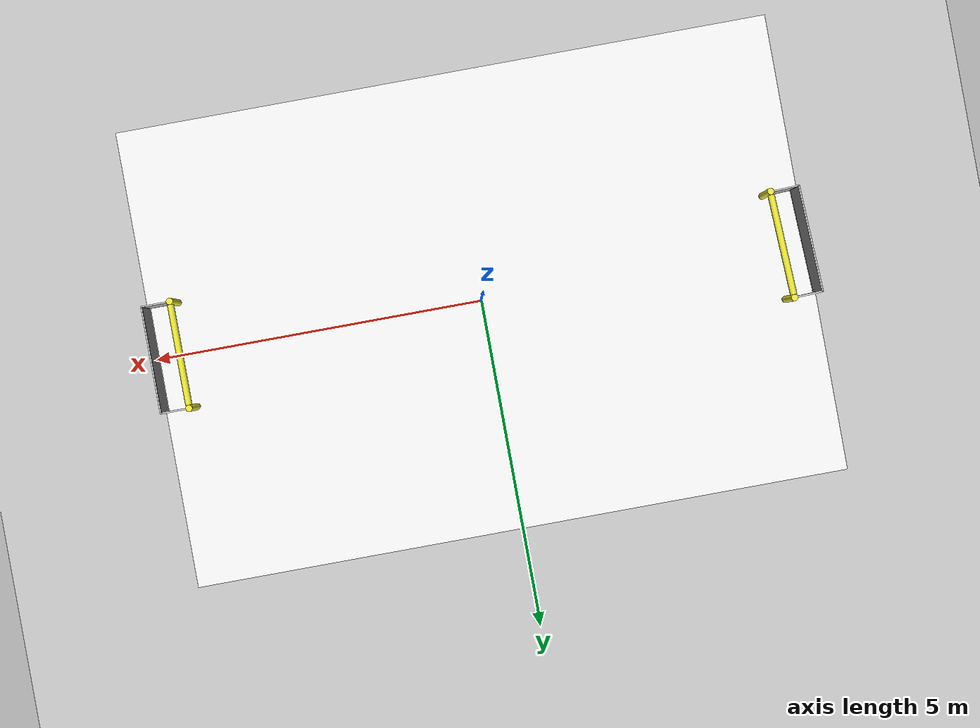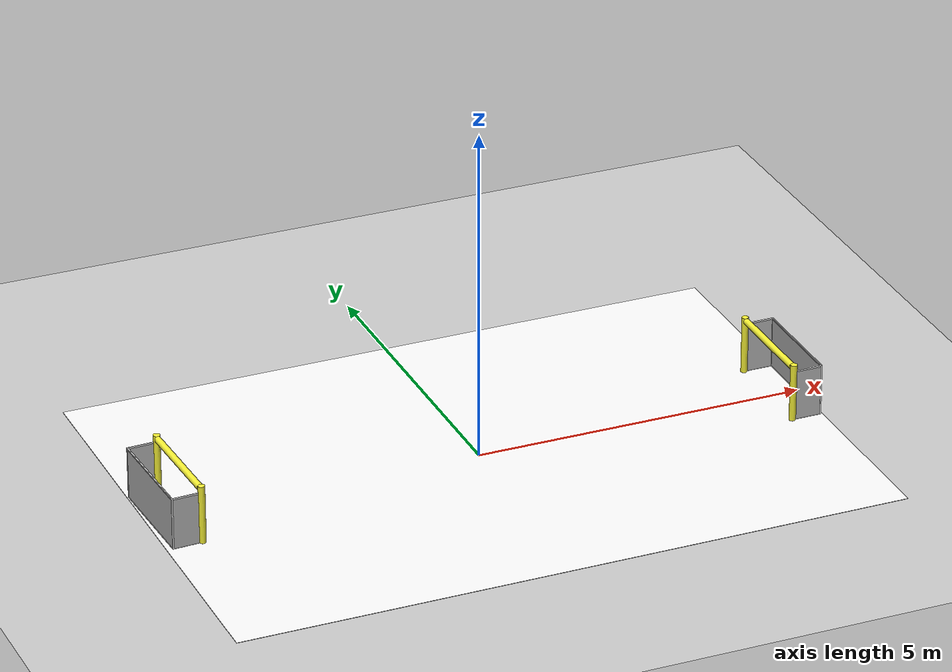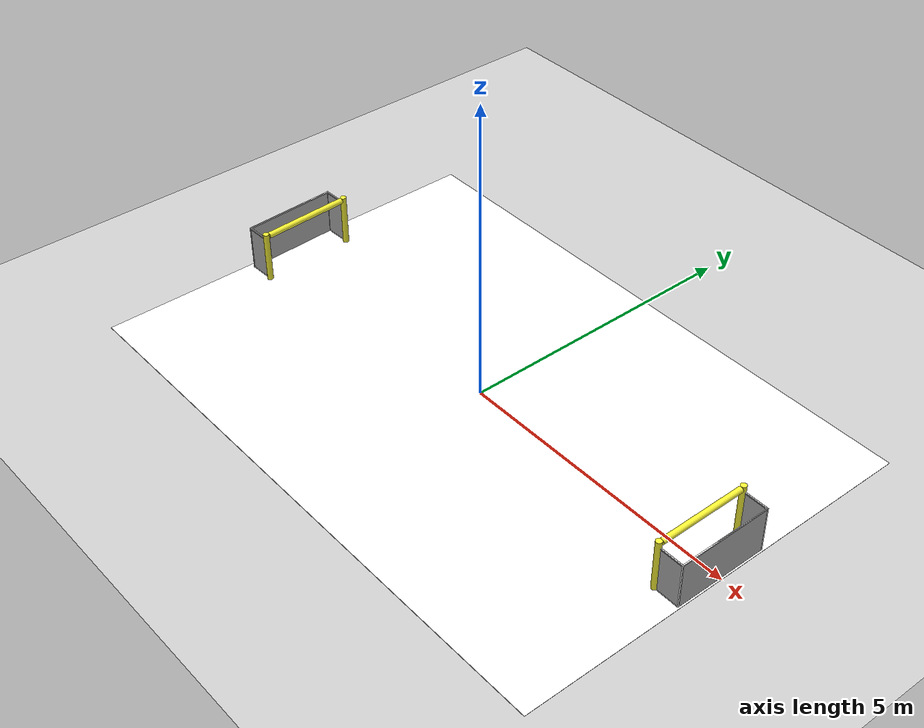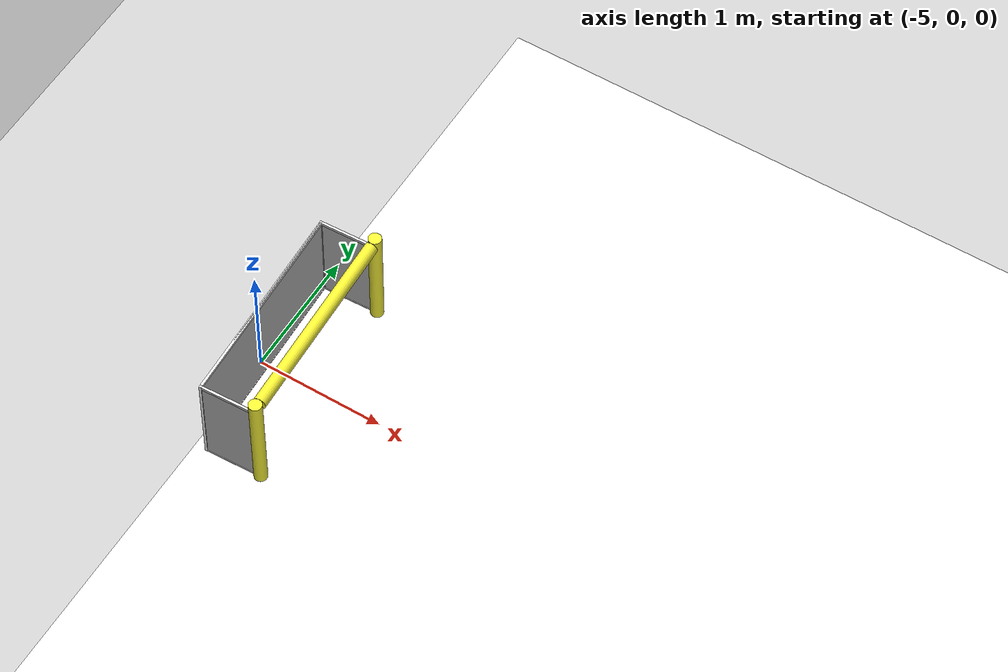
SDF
<sdf version="1.10">
 <world name="altair_world">
  <physics name="1ms" type="ignored">
   <max_step_size>0.001</max_step_size>
   <real_time_factor>1</real_time_factor>
   <real_time_update_rate>1000</real_time_update_rate>
  </physics>
  <plugin name="gz::sim::systems::Physics" filename="gz-sim-physics-system"/>
  <plugin name="gz::sim::systems::UserCommands" filename="gz-sim-user-commands-system"/>
  <plugin name="gz::sim::systems::SceneBroadcaster" filename="gz-sim-scene-broadcaster-system"/>
  <plugin name="gz::sim::systems::Sensors" filename="gz-sim-sensors-system">
   <render_engine>ogre2</render_engine>
  </plugin>
  <plugin name="gz::sim::systems::LogicalCamera" filename="gz-sim-logical-camera-system"/>
  <gravity>0 0 -9.8000000000000007</gravity>
  <magnetic_field>5.5644999999999998e-06 2.2875799999999999e-05 -4.2388400000000002e-05</magnetic_field>
  <atmosphere type="adiabatic"/>
  <scene>
   <ambient>0.400000006 0.400000006 0.400000006 1</ambient>
   <background>0.699999988 0.699999988 0.699999988 1</background>
   <shadows>true</shadows>
  </scene>
  <model name="ground_plane">
   <static>true</static>
   <link name="link">
    <collision name="collision">
     <geometry><plane><normal>0 0 1</normal><size>1 1</size></plane></geometry>
    </collision>
    <visual name="visual">
     <geometry><plane><normal>0 0 1</normal><size>100 100</size></plane></geometry>
     <material>
      <ambient>0.800000012 0.800000012 0.800000012 1</ambient>
      <diffuse>0.800000012 0.800000012 0.800000012 1</diffuse>
      <specular>0.800000012 0.800000012 0.800000012 1</specular>
     </material>
    </visual>
    <inertial>
     <mass>1</mass>
     <inertia><ixx>1</ixx><ixy>0</ixy><ixz>0</ixz><iyy>1</iyy><iyz>0</iyz><izz>1</izz></inertia>
    </inertial>
   </link>
  </model>
  <model name="robocup_3d_field">
   <static>true</static>
   <link name="field">
    <pose>0 0 0.01 0 0 0</pose>
    <collision name="collision">
     <geometry><plane><normal>0 0 1</normal><size>10.0 7.0</size></plane></geometry>
     <surface><friction><ode><mu>100</mu><mu2>50</mu2></ode></friction></surface>
    </collision>
    <visual name="carpet">
     <cast_shadows>false</cast_shadows>
     <geometry><plane><normal>0 0 1</normal><size>10.0 7.0</size></plane></geometry>
     <material>
      <diffuse>1.0 1.0 1.0</diffuse>
      <specular>1.0 1.0 1.0</specular>
      <pbr>
       <metal>
        <albedo_map>textures/plane_a.png</albedo_map>
        <roughness_map>textures/plane_r.png</roughness_map>
        <normal_map>textures/plane_n.png</normal_map>
       </metal>
      </pbr>
     </material>
    </visual>
   </link>
  </model>
  <model name="Goal1">
   <static>true</static>
   <link name="left_post">
    <pose>0 0.80000000000000004 0.45000000000000001 0 0 0</pose>
    <collision name="collision">
     <geometry>
      <cylinder><radius>0.050000000000000003</radius><length>0.90000000000000002</length></cylinder>
     </geometry>
    </collision>
    <visual name="visual">
     <geometry>
      <cylinder><radius>0.050000000000000003</radius><length>0.90000000000000002</length></cylinder>
     </geometry>
     <material>
      <ambient>0.972500026 0.952899992 0.207800001 1</ambient>
      <diffuse>0.972500026 0.952899992 0.207800001 1</diffuse>
      <specular>0.972500026 0.952899992 0.207800001 1</specular>
     </material>
    </visual>
    <inertial>
     <mass>1</mass>
     <inertia><ixx>1</ixx><ixy>0</ixy><ixz>0</ixz><iyy>1</iyy><iyz>0</iyz><izz>1</izz></inertia>
    </inertial>
   </link>
   <link name="left_support_horiz_lower">
    <pose>0.24000000000000021 0.80000000000000004 0.01 0 0 0</pose>
    <collision name="collision"><geometry><box><size>0.38 0.02 0.02</size></box></geometry></collision>
    <visual name="visual">
     <geometry><box><size>0.38 0.02 0.02</size></box></geometry>
     <material><ambient>1 1 1 1</ambient><diffuse>1 1 1 1</diffuse><specular>1 1 1 1</specular></material>
    </visual>
    <inertial>
     <mass>1</mass>
     <inertia><ixx>1</ixx><ixy>0</ixy><ixz>0</ixz><iyy>1</iyy><iyz>0</iyz><izz>1</izz></inertia>
    </inertial>
   </link>
   <link name="left_support_horiz_upper">
    <pose>0.24000000000000021 0.80000000000000004 0.79000000000000004 0 0 0</pose>
    <collision name="collision"><geometry><box><size>0.38 0.02 0.02</size></box></geometry></collision>
    <visual name="visual">
     <geometry><box><size>0.38 0.02 0.02</size></box></geometry>
     <material><ambient>1 1 1 1</ambient><diffuse>1 1 1 1</diffuse><specular>1 1 1 1</specular></material>
    </visual>
    <inertial>
     <mass>1</mass>
     <inertia><ixx>1</ixx><ixy>0</ixy><ixz>0</ixz><iyy>1</iyy><iyz>0</iyz><izz>1</izz></inertia>
    </inertial>
   </link>
   <link name="left_support_vertical">
    <pose>0.44000000000000039 0.80000000000000004 0.40000000000000002 3.1415926535897931 1.5707926536057681 3.1415926535897931</pose>
    <collision name="collision">
     <geometry><box><size>0.80000000000000004 0.02 0.02</size></box></geometry>
    </collision>
    <visual name="visual">
     <geometry><box><size>0.80000000000000004 0.02 0.02</size></box></geometry>
     <material><ambient>1 1 1 1</ambient><diffuse>1 1 1 1</diffuse><specular>1 1 1 1</specular></material>
    </visual>
    <inertial>
     <mass>1</mass>
     <inertia><ixx>1</ixx><ixy>0</ixy><ixz>0</ixz><iyy>1</iyy><iyz>0</iyz><izz>1</izz></inertia>
    </inertial>
   </link>
   <link name="right_support_horiz_lower">
    <pose>0.24000000000000021 -0.80000000000000004 0.01 0 0 0</pose>
    <collision name="collision"><geometry><box><size>0.38 0.02 0.02</size></box></geometry></collision>
    <visual name="visual">
     <geometry><box><size>0.38 0.02 0.02</size></box></geometry>
     <material><ambient>1 1 1 1</ambient><diffuse>1 1 1 1</diffuse><specular>1 1 1 1</specular></material>
    </visual>
    <inertial>
     <mass>1</mass>
     <inertia><ixx>1</ixx><ixy>0</ixy><ixz>0</ixz><iyy>1</iyy><iyz>0</iyz><izz>1</izz></inertia>
    </inertial>
   </link>
   <link name="right_support_horiz_upper">
    <pose>0.24000000000000021 -0.80000000000000004 0.79000000000000004 0 0 0</pose>
    <collision name="collision"><geometry><box><size>0.38 0.02 0.02</size></box></geometry></collision>
    <visual name="visual">
     <geometry><box><size>0.38 0.02 0.02</size></box></geometry>
     <material><ambient>1 1 1 1</ambient><diffuse>1 1 1 1</diffuse><specular>1 1 1 1</specular></material>
    </visual>
    <inertial>
     <mass>1</mass>
     <inertia><ixx>1</ixx><ixy>0</ixy><ixz>0</ixz><iyy>1</iyy><iyz>0</iyz><izz>1</izz></inertia>
    </inertial>
   </link>
   <link name="right_support_vertical">
    <pose>0.44000000000000039 -0.80000000000000004 0.40000000000000002 3.1415926535897931 1.5707926536057681 3.1415926535897931</pose>
    <collision name="collision">
     <geometry><box><size>0.80000000000000004 0.02 0.02</size></box></geometry>
    </collision>
    <visual name="visual">
     <geometry><box><size>0.80000000000000004 0.02 0.02</size></box></geometry>
     <material><ambient>1 1 1 1</ambient><diffuse>1 1 1 1</diffuse><specular>1 1 1 1</specular></material>
    </visual>
    <inertial>
     <mass>1</mass>
     <inertia><ixx>1</ixx><ixy>0</ixy><ixz>0</ixz><iyy>1</iyy><iyz>0</iyz><izz>1</izz></inertia>
    </inertial>
   </link>
   <link name="center_support_horiz_lower">
    <pose>0.44000000000000039 0 0.01 3.1415926535897931 1.5707926536057681 3.1415926535897931</pose>
    <collision name="collision">
     <geometry><box><size>0.02 1.5800000000000001 0.02</size></box></geometry>
    </collision>
    <visual name="visual">
     <geometry><box><size>0.02 1.5800000000000001 0.02</size></box></geometry>
     <material><ambient>1 1 1 1</ambient><diffuse>1 1 1 1</diffuse><specular>1 1 1 1</specular></material>
    </visual>
    <inertial>
     <mass>1</mass>
     <inertia><ixx>1</ixx><ixy>0</ixy><ixz>0</ixz><iyy>1</iyy><iyz>0</iyz><izz>1</izz></inertia>
    </inertial>
   </link>
   <link name="center_support_horiz_upper">
    <pose>0.44000000000000039 0 0.79000000000000004 3.1415926535897931 1.5707926536057681 3.1415926535897931</pose>
    <collision name="collision">
     <geometry><box><size>0.02 1.5800000000000001 0.02</size></box></geometry>
    </collision>
    <visual name="visual">
     <geometry><box><size>0.02 1.5800000000000001 0.02</size></box></geometry>
     <material><ambient>1 1 1 1</ambient><diffuse>1 1 1 1</diffuse><specular>1 1 1 1</specular></material>
    </visual>
    <inertial>
     <mass>1</mass>
     <inertia><ixx>1</ixx><ixy>0</ixy><ixz>0</ixz><iyy>1</iyy><iyz>0</iyz><izz>1</izz></inertia>
    </inertial>
   </link>
   <link name="right_post">
    <pose>0 -0.80000000000000004 0.45000000000000001 0 0 0</pose>
    <collision name="collision">
     <geometry>
      <cylinder><radius>0.050000000000000003</radius><length>0.90000000000000002</length></cylinder>
     </geometry>
    </collision>
    <visual name="visual">
     <geometry>
      <cylinder><radius>0.050000000000000003</radius><length>0.90000000000000002</length></cylinder>
     </geometry>
     <material>
      <ambient>0.972500026 0.952899992 0.207800001 1</ambient>
      <diffuse>0.972500026 0.952899992 0.207800001 1</diffuse>
      <specular>0.972500026 0.952899992 0.207800001 1</specular>
     </material>
    </visual>
    <inertial>
     <mass>1</mass>
     <inertia><ixx>1</ixx><ixy>0</ixy><ixz>0</ixz><iyy>1</iyy><iyz>0</iyz><izz>1</izz></inertia>
    </inertial>
   </link>
   <link name="crossbar">
    <pose>0 0 0.84999999999999998 1.5699999999995324 1.5699999999998482 -4.8796311025015653e-13</pose>
    <collision name="collision">
     <geometry><cylinder><radius>0.050000000000000003</radius><length>1.5</length></cylinder></geometry>
    </collision>
    <visual name="visual">
     <geometry><cylinder><radius>0.050000000000000003</radius><length>1.5</length></cylinder></geometry>
     <material>
      <ambient>0.972500026 0.952899992 0.207800001 1</ambient>
      <diffuse>0.972500026 0.952899992 0.207800001 1</diffuse>
      <specular>0.972500026 0.952899992 0.207800001 1</specular>
     </material>
    </visual>
    <inertial>
     <mass>1</mass>
     <inertia><ixx>1</ixx><ixy>0</ixy><ixz>0</ixz><iyy>1</iyy><iyz>0</iyz><izz>1</izz></inertia>
    </inertial>
   </link>
   <link name="center_net">
    <pose>0.44000000000000039 0 0.40000000000000002 0 0 0</pose>
    <collision name="collision">
     <geometry><box><size>0.01 1.6000000000000001 0.80000000000000004</size></box></geometry>
    </collision>
    <visual name="visual">
     <geometry><box><size>0.01 1.6000000000000001 0.80000000000000004</size></box></geometry>
     <material>
      <script>
       <uri>file:///src/altair_simulation/models/RoboCup_Goal/model.sdf</uri>
       <name>RoboCup/Net</name>
      </script>
     </material>
    </visual>
    <inertial>
     <mass>1</mass>
     <inertia><ixx>1</ixx><ixy>0</ixy><ixz>0</ixz><iyy>1</iyy><iyz>0</iyz><izz>1</izz></inertia>
    </inertial>
   </link>
   <link name="left_net">
    <pose>0.24000000000000021 0.80000000000000004 0.40000000000000002 0 0 0</pose>
    <collision name="collision">
     <geometry><box><size>0.38 0.01 0.76000000000000001</size></box></geometry>
    </collision>
    <visual name="visual">
     <geometry><box><size>0.38 0.01 0.76000000000000001</size></box></geometry>
     <material>
      <script>
       <uri>file:///src/altair_simulation/models/RoboCup_Goal/model.sdf</uri>
       <name>RoboCup/Net</name>
      </script>
     </material>
    </visual>
    <inertial>
     <mass>1</mass>
     <inertia><ixx>1</ixx><ixy>0</ixy><ixz>0</ixz><iyy>1</iyy><iyz>0</iyz><izz>1</izz></inertia>
    </inertial>
   </link>
   <link name="right_net">
    <pose>0.24000000000000021 -0.80000000000000004 0.40000000000000002 0 0 0</pose>
    <collision name="collision">
     <geometry><box><size>0.38 0.01 0.76000000000000001</size></box></geometry>
    </collision>
    <visual name="visual">
     <geometry><box><size>0.38 0.01 0.76000000000000001</size></box></geometry>
     <material>
      <script>
       <uri>file:///src/altair_simulation/models/RoboCup_Goal/model.sdf</uri>
       <name>RoboCup/Net</name>
      </script>
     </material>
    </visual>
    <inertial>
     <mass>1</mass>
     <inertia><ixx>1</ixx><ixy>0</ixy><ixz>0</ixz><iyy>1</iyy><iyz>0</iyz><izz>1</izz></inertia>
    </inertial>
   </link>
   <pose>4.5240178108215332 0 0 0 0 0</pose>
  </model>
  <model name="Goal2">
   <static>true</static>
   <link name="left_post">
    <pose>0 0.80000000000000004 0.45000000000000001 0 0 0</pose>
    <collision name="collision">
     <geometry>
      <cylinder><radius>0.050000000000000003</radius><length>0.90000000000000002</length></cylinder>
     </geometry>
    </collision>
    <visual name="visual">
     <geometry>
      <cylinder><radius>0.050000000000000003</radius><length>0.90000000000000002</length></cylinder>
     </geometry>
     <material>
      <ambient>0.972500026 0.952899992 0.207800001 1</ambient>
      <diffuse>0.972500026 0.952899992 0.207800001 1</diffuse>
      <specular>0.972500026 0.952899992 0.207800001 1</specular>
     </material>
    </visual>
    <inertial>
     <mass>1</mass>
     <inertia><ixx>1</ixx><ixy>0</ixy><ixz>0</ixz><iyy>1</iyy><iyz>0</iyz><izz>1</izz></inertia>
    </inertial>
   </link>
   <link name="left_support_horiz_lower">
    <pose>0.24000034618732435 0.79999998902457248 0.010000000000000002 0 0 0</pose>
    <collision name="collision"><geometry><box><size>0.38 0.02 0.02</size></box></geometry></collision>
    <visual name="visual">
     <geometry><box><size>0.38 0.02 0.02</size></box></geometry>
     <material><ambient>1 1 1 1</ambient><diffuse>1 1 1 1</diffuse><specular>1 1 1 1</specular></material>
    </visual>
    <inertial>
     <mass>1</mass>
     <inertia><ixx>1</ixx><ixy>0</ixy><ixz>0</ixz><iyy>1</iyy><iyz>0</iyz><izz>1</izz></inertia>
    </inertial>
   </link>
   <link name="left_support_horiz_upper">
    <pose>0.24000034618732435 0.79999998902457248 0.79000000000000004 0 0 0</pose>
    <collision name="collision"><geometry><box><size>0.38 0.02 0.02</size></box></geometry></collision>
    <visual name="visual">
     <geometry><box><size>0.38 0.02 0.02</size></box></geometry>
     <material><ambient>1 1 1 1</ambient><diffuse>1 1 1 1</diffuse><specular>1 1 1 1</specular></material>
    </visual>
    <inertial>
     <mass>1</mass>
     <inertia><ixx>1</ixx><ixy>0</ixy><ixz>0</ixz><iyy>1</iyy><iyz>0</iyz><izz>1</izz></inertia>
    </inertial>
   </link>
   <link name="left_support_vertical">
    <pose>0.4400006346767622 0.79999997987838234 0.40000000000000002 3.1415926531823835 1.5707926536359933 3.1415926531823861</pose>
    <collision name="collision">
     <geometry><box><size>0.80000000000000004 0.02 0.02</size></box></geometry>
    </collision>
    <visual name="visual">
     <geometry><box><size>0.80000000000000004 0.02 0.02</size></box></geometry>
     <material><ambient>1 1 1 1</ambient><diffuse>1 1 1 1</diffuse><specular>1 1 1 1</specular></material>
    </visual>
    <inertial>
     <mass>1</mass>
     <inertia><ixx>1</ixx><ixy>0</ixy><ixz>0</ixz><iyy>1</iyy><iyz>0</iyz><izz>1</izz></inertia>
    </inertial>
   </link>
   <link name="right_support_horiz_lower">
    <pose>0.24000027301780413 -0.80000231889093154 0.010000000000000002 0 0 0</pose>
    <collision name="collision"><geometry><box><size>0.38 0.02 0.02</size></box></geometry></collision>
    <visual name="visual">
     <geometry><box><size>0.38 0.02 0.02</size></box></geometry>
     <material><ambient>1 1 1 1</ambient><diffuse>1 1 1 1</diffuse><specular>1 1 1 1</specular></material>
    </visual>
    <inertial>
     <mass>1</mass>
     <inertia><ixx>1</ixx><ixy>0</ixy><ixz>0</ixz><iyy>1</iyy><iyz>0</iyz><izz>1</izz></inertia>
    </inertial>
   </link>
   <link name="right_support_horiz_upper">
    <pose>0.24000027301780413 -0.80000231889093154 0.79000000000000004 0 0 0</pose>
    <collision name="collision"><geometry><box><size>0.38 0.02 0.02</size></box></geometry></collision>
    <visual name="visual">
     <geometry><box><size>0.38 0.02 0.02</size></box></geometry>
     <material><ambient>1 1 1 1</ambient><diffuse>1 1 1 1</diffuse><specular>1 1 1 1</specular></material>
    </visual>
    <inertial>
     <mass>1</mass>
     <inertia><ixx>1</ixx><ixy>0</ixy><ixz>0</ixz><iyy>1</iyy><iyz>0</iyz><izz>1</izz></inertia>
    </inertial>
   </link>
   <link name="right_support_vertical">
    <pose>0.44000056150724465 -0.80000232803712157 0.40000000000000002 3.1415926531823835 1.5707926536359933 3.1415926531823861</pose>
    <collision name="collision">
     <geometry><box><size>0.80000000000000004 0.02 0.02</size></box></geometry>
    </collision>
    <visual name="visual">
     <geometry><box><size>0.80000000000000004 0.02 0.02</size></box></geometry>
     <material><ambient>1 1 1 1</ambient><diffuse>1 1 1 1</diffuse><specular>1 1 1 1</specular></material>
    </visual>
    <inertial>
     <mass>1</mass>
     <inertia><ixx>1</ixx><ixy>0</ixy><ixz>0</ixz><iyy>1</iyy><iyz>0</iyz><izz>1</izz></inertia>
    </inertial>
   </link>
   <link name="center_support_horiz_lower">
    <pose>0.44000059809200209 -1.1740793695591556e-06 0.010000000000000002 3.1415926531823835 1.5707926536359933 3.1415926531823861</pose>
    <collision name="collision">
     <geometry><box><size>0.02 1.5800000000000001 0.02</size></box></geometry>
    </collision>
    <visual name="visual">
     <geometry><box><size>0.02 1.5800000000000001 0.02</size></box></geometry>
     <material><ambient>1 1 1 1</ambient><diffuse>1 1 1 1</diffuse><specular>1 1 1 1</specular></material>
    </visual>
    <inertial>
     <mass>1</mass>
     <inertia><ixx>1</ixx><ixy>0</ixy><ixz>0</ixz><iyy>1</iyy><iyz>0</iyz><izz>1</izz></inertia>
    </inertial>
   </link>
   <link name="center_support_horiz_upper">
    <pose>0.44000059809200209 -1.1740793695591556e-06 0.79000000000000004 3.1415926531823835 1.5707926536359933 3.1415926531823861</pose>
    <collision name="collision">
     <geometry><box><size>0.02 1.5800000000000001 0.02</size></box></geometry>
    </collision>
    <visual name="visual">
     <geometry><box><size>0.02 1.5800000000000001 0.02</size></box></geometry>
     <material><ambient>1 1 1 1</ambient><diffuse>1 1 1 1</diffuse><specular>1 1 1 1</specular></material>
    </visual>
    <inertial>
     <mass>1</mass>
     <inertia><ixx>1</ixx><ixy>0</ixy><ixz>0</ixz><iyy>1</iyy><iyz>0</iyz><izz>1</izz></inertia>
    </inertial>
   </link>
   <link name="right_post">
    <pose>-7.316952022051737e-08 -0.80000230791550386 0.45000000000000001 0 0 0</pose>
    <collision name="collision">
     <geometry>
      <cylinder><radius>0.050000000000000003</radius><length>0.90000000000000002</length></cylinder>
     </geometry>
    </collision>
    <visual name="visual">
     <geometry>
      <cylinder><radius>0.050000000000000003</radius><length>0.90000000000000002</length></cylinder>
     </geometry>
     <material>
      <ambient>0.972500026 0.952899992 0.207800001 1</ambient>
      <diffuse>0.972500026 0.952899992 0.207800001 1</diffuse>
      <specular>0.972500026 0.952899992 0.207800001 1</specular>
     </material>
    </visual>
    <inertial>
     <mass>1</mass>
     <inertia><ixx>1</ixx><ixy>0</ixy><ixz>0</ixz><iyy>1</iyy><iyz>0</iyz><izz>1</izz></inertia>
    </inertial>
   </link>
   <link name="crossbar">
    <pose>-3.6584760110258685e-08 -1.153957751964807e-06 0.8500000000000002 1.5700000000009968 1.5700000000006846 -1.1593083348653668e-06</pose>
    <collision name="collision">
     <geometry><cylinder><radius>0.050000000000000003</radius><length>1.5</length></cylinder></geometry>
    </collision>
    <visual name="visual">
     <geometry><cylinder><radius>0.050000000000000003</radius><length>1.5</length></cylinder></geometry>
     <material>
      <ambient>0.972500026 0.952899992 0.207800001 1</ambient>
      <diffuse>0.972500026 0.952899992 0.207800001 1</diffuse>
      <specular>0.972500026 0.952899992 0.207800001 1</specular>
     </material>
    </visual>
    <inertial>
     <mass>1</mass>
     <inertia><ixx>1</ixx><ixy>0</ixy><ixz>0</ixz><iyy>1</iyy><iyz>0</iyz><izz>1</izz></inertia>
    </inertial>
   </link>
   <link name="center_net">
    <pose>0.44000059809200209 -1.1740793695591556e-06 0.40000000000000002 0 0 0</pose>
    <collision name="collision">
     <geometry><box><size>0.01 1.6000000000000001 0.80000000000000004</size></box></geometry>
    </collision>
    <visual name="visual">
     <geometry><box><size>0.01 1.6000000000000001 0.80000000000000004</size></box></geometry>
     <material>
      <script>
       <uri>file:///src/altair_simulation/models/RoboCup_Goal/model.sdf</uri>
       <name>RoboCup/Net</name>
      </script>
     </material>
    </visual>
    <inertial>
     <mass>1</mass>
     <inertia><ixx>1</ixx><ixy>0</ixy><ixz>0</ixz><iyy>1</iyy><iyz>0</iyz><izz>1</izz></inertia>
    </inertial>
   </link>
   <link name="left_net">
    <pose>0.24000034618732435 0.79999998902457248 0.40000000000000002 0 0 0</pose>
    <collision name="collision">
     <geometry><box><size>0.38 0.01 0.76000000000000001</size></box></geometry>
    </collision>
    <visual name="visual">
     <geometry><box><size>0.38 0.01 0.76000000000000001</size></box></geometry>
     <material>
      <script>
       <uri>file:///src/altair_simulation/models/RoboCup_Goal/model.sdf</uri>
       <name>RoboCup/Net</name>
      </script>
     </material>
    </visual>
    <inertial>
     <mass>1</mass>
     <inertia><ixx>1</ixx><ixy>0</ixy><ixz>0</ixz><iyy>1</iyy><iyz>0</iyz><izz>1</izz></inertia>
    </inertial>
   </link>
   <link name="right_net">
    <pose>0.24000027301780413 -0.80000231889093154 0.40000000000000002 0 0 0</pose>
    <collision name="collision">
     <geometry><box><size>0.38 0.01 0.76000000000000001</size></box></geometry>
    </collision>
    <visual name="visual">
     <geometry><box><size>0.38 0.01 0.76000000000000001</size></box></geometry>
     <material>
      <script>
       <uri>file:///src/altair_simulation/models/RoboCup_Goal/model.sdf</uri>
       <name>RoboCup/Net</name>
      </script>
     </material>
    </visual>
    <inertial>
     <mass>1</mass>
     <inertia><ixx>1</ixx><ixy>0</ixy><ixz>0</ixz><iyy>1</iyy><iyz>0</iyz><izz>1</izz></inertia>
    </inertial>
   </link>
   <pose>-4.5 0 0 0 0 -3.1000000000000001</pose>
  </model>
  <light name="sun" type="directional">
   <pose>0 0 10 0 0 0</pose>
   <intensity>1</intensity>
   <direction>-0.5 0.10000000000000001 -0.90000000000000002</direction>
   <diffuse>0.800000012 0.800000012 0.800000012 1</diffuse>
   <specular>0.200000003 0.200000003 0.200000003 1</specular>
   <attenuation>
    <range>1000</range>
    <linear>0.01</linear>
    <constant>0.90000000000000002</constant>
    <quadratic>0.001</quadratic>
   </attenuation>
   <spot><inner_angle>0</inner_angle><outer_angle>0</outer_angle><falloff>0</falloff></spot>
  </light>
 </world>
</sdf>
